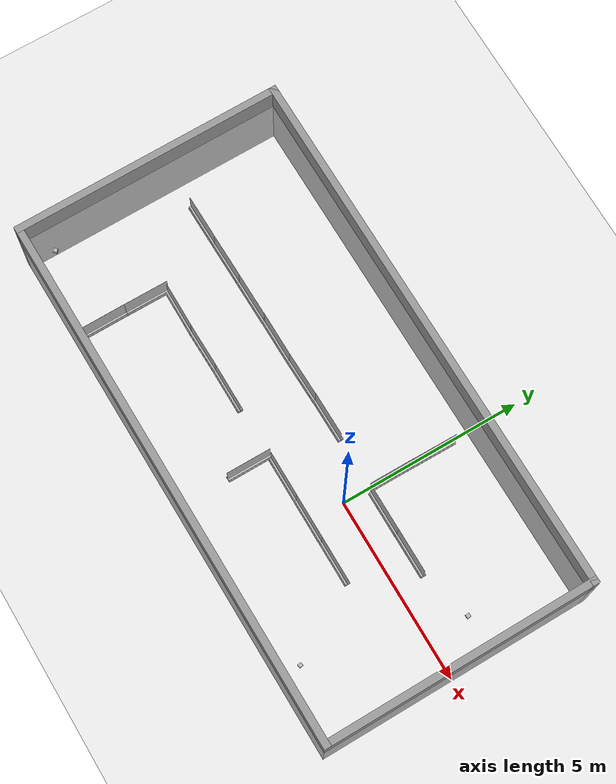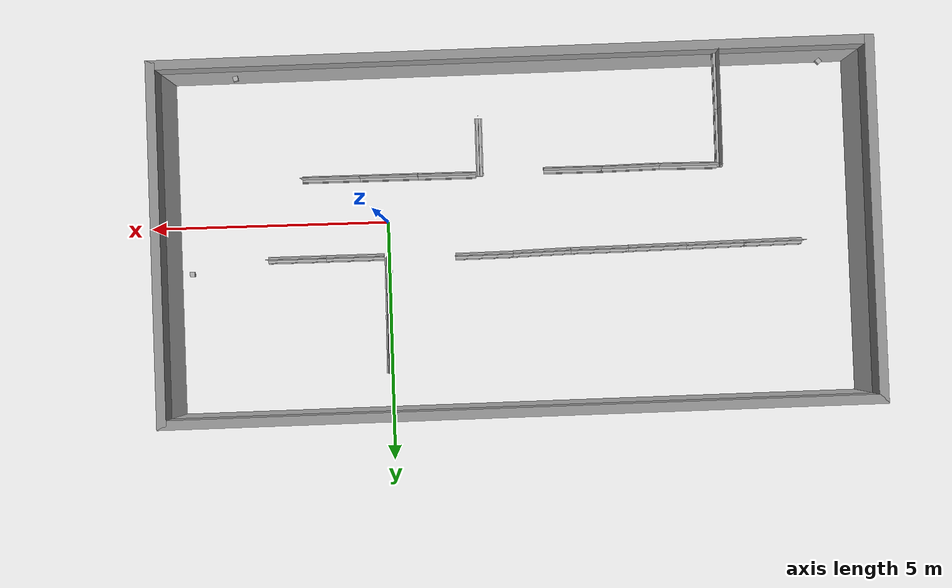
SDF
<sdf version="1.5">
 <world name="default">
  <scene>
   <sky><clouds><speed>12</speed></clouds></sky>
   <ambient>0.4 0.4 0.4 1</ambient>
   <background>0.7 0.7 0.7 1</background>
   <shadows>1</shadows>
  </scene>
  <light name="sun" type="directional">
   <pose>0 0 10 0 -0 0</pose>
   <diffuse>0.8 0.8 0.8 1</diffuse>
   <specular>0.2 0.2 0.2 1</specular>
   <attenuation>
    <range>1000</range>
    <constant>0.9</constant>
    <linear>0.01</linear>
    <quadratic>0.001</quadratic>
   </attenuation>
   <direction>-0.5 0.1 -0.9</direction>
  </light>
  <model name="ground_plane">
   <pose>4 0 0 0 -0 0</pose>
   <static>1</static>
   <link name="link">
    <collision name="collision">
     <geometry><plane><normal>0 0 1</normal><size>100 100</size></plane></geometry>
     <surface><friction><ode><mu>100</mu><mu2>50</mu2></ode></friction></surface>
    </collision>
    <visual name="visual">
     <cast_shadows>0</cast_shadows>
     <geometry><plane><normal>0 0 1</normal><size>100 100</size></plane></geometry>
     <material>
      <script><uri>file://media/materials/scripts/gazebo.material</uri><name>Gazebo/Grey</name></script>
     </material>
    </visual>
    <velocity_decay><linear>0</linear><angular>0</angular></velocity_decay>
   </link>
  </model>
  <physics name="default_physics" default="0" type="ode">
   <max_step_size>0.001</max_step_size>
   <real_time_factor>1</real_time_factor>
   <real_time_update_rate>1000</real_time_update_rate>
   <gravity>0 0 -9.8</gravity>
   <magnetic_field>5.5645e-06 2.28758e-05 -4.23884e-05</magnetic_field>
  </physics>
  <scene><ambient>0.4 0.4 0.4 1</ambient><background>0.7 0.7 0.7 1</background><shadows>1</shadows></scene>
  <spherical_coordinates>
   <surface_model>EARTH_WGS84</surface_model>
   <latitude_deg>0</latitude_deg>
   <longitude_deg>0</longitude_deg>
   <elevation>0</elevation>
   <heading_deg>0</heading_deg>
  </spherical_coordinates>
  <model name="building_template_model">
   <static>1</static>
   <link name="__default__"><velocity_decay><linear>0</linear><angular>0</angular></velocity_decay></link>
  </model>
  <model name="Fleming_big">
   <pose>-2.70751 4.05396 -1.82922 0 0 -3.13501</pose>
   <link name="Wall_0">
    <collision name="Wall_0_Collision">
     <geometry><box><size>15.2 0.2 2.5</size></box></geometry>
     <pose>0 0 1.25 0 -0 0</pose>
    </collision>
    <visual name="Wall_0_Visual">
     <pose>0 0 1.25 0 -0 0</pose>
     <geometry><box><size>15.2 0.2 2.5</size></box></geometry>
     <material>
      <script><uri>file://media/materials/scripts/gazebo.material</uri><name>Gazebo/Grey</name></script>
     </material>
    </visual>
    <velocity_decay><linear>0</linear><angular>0</angular></velocity_decay>
   </link>
   <link name="Wall_2">
    <collision name="Wall_2_Collision">
     <geometry><box><size>7.7 0.2 2.5</size></box></geometry>
     <pose>0 0 1.25 0 -0 0</pose>
    </collision>
    <visual name="Wall_2_Visual">
     <pose>0 0 1.25 0 -0 0</pose>
     <geometry><box><size>7.7 0.2 2.5</size></box></geometry>
     <material>
      <script><uri>file://media/materials/scripts/gazebo.material</uri><name>Gazebo/Grey</name></script>
     </material>
    </visual>
    <velocity_decay><linear>0</linear><angular>0</angular></velocity_decay>
    <pose>-7.5 3.75 0 0 -0 1.5708</pose>
   </link>
   <link name="Wall_3">
    <collision name="Wall_3_Collision">
     <geometry><box><size>15.2 0.2 2.5</size></box></geometry>
     <pose>0 0 1.25 0 -0 0</pose>
    </collision>
    <visual name="Wall_3_Visual">
     <pose>0 0 1.25 0 -0 0</pose>
     <geometry><box><size>15.2 0.2 2.5</size></box></geometry>
     <material>
      <script><uri>file://media/materials/scripts/gazebo.material</uri><name>Gazebo/Grey</name></script>
     </material>
    </visual>
    <velocity_decay><linear>0</linear><angular>0</angular></velocity_decay>
    <pose>0 7.5 0 0 -0 0</pose>
   </link>
   <link name="Wall_4">
    <collision name="Wall_4_Collision">
     <geometry><box><size>7.7 0.2 2.5</size></box></geometry>
     <pose>0 0 1.25 0 -0 0</pose>
    </collision>
    <visual name="Wall_4_Visual">
     <pose>0 0 1.25 0 -0 0</pose>
     <geometry><box><size>7.7 0.2 2.5</size></box></geometry>
     <material>
      <script><uri>file://media/materials/scripts/gazebo.material</uri><name>Gazebo/Grey</name></script>
     </material>
    </visual>
    <velocity_decay><linear>0</linear><angular>0</angular></velocity_decay>
    <pose>7.5 3.75 0 0 0 -1.5708</pose>
   </link>
   <static>1</static>
  </model>
  <model name="security camera1">
   <static>1</static>
   <pose>-9 -3 1.04429 0 -0 0.735896</pose>
   <link name="link">
    <inertial><mass>0.1</mass></inertial>
    <collision name="collision"><geometry><box><size>0.1 0.1 0.1</size></box></geometry></collision>
    <visual name="visual"><geometry><box><size>0.1 0.1 0.1</size></box></geometry></visual>
    <sensor name="camera" type="camera">
     <camera name="__default__">
      <horizontal_fov>1.047</horizontal_fov>
      <image><width>320</width><height>240</height></image>
      <clip><near>0.1</near><far>100</far></clip>
     </camera>
     <plugin name="security_camera1_controller" filename="libgazebo_ros_camera.so">
      <always_on>1</always_on>
      <update_rate>30</update_rate>
      <cameraName>security_camera1/camera</cameraName>
      <imageTopicName>image_raw</imageTopicName>
      <cameraInfoTopicName>camera_info</cameraInfoTopicName>
      <frameName>camera_link</frameName>
      <hackBaseline>0.07</hackBaseline>
      <distortionK1>0.0</distortionK1>
      <distortionK2>0.0</distortionK2>
      <distortionK3>0.0</distortionK3>
      <distortionT1>0.0</distortionT1>
      <distortionT2>0.0</distortionT2>
     </plugin>
     <visualize>0</visualize>
    </sensor>
   </link>
  </model>
  <model name="security camera2">
   <static>1</static>
   <pose>4 1 0.968306 0 0 -3.12106</pose>
   <link name="link">
    <inertial><mass>0.1</mass></inertial>
    <collision name="collision"><geometry><box><size>0.1 0.1 0.1</size></box></geometry></collision>
    <visual name="visual"><geometry><box><size>0.1 0.1 0.1</size></box></geometry></visual>
    <sensor name="camera" type="camera">
     <camera name="__default__">
      <horizontal_fov>1.047</horizontal_fov>
      <image><width>320</width><height>240</height></image>
      <clip><near>0.1</near><far>100</far></clip>
     </camera>
     <plugin name="security_camera2_controller" filename="libgazebo_ros_camera.so">
      <always_on>1</always_on>
      <update_rate>30</update_rate>
      <cameraName>security_camera2/camera</cameraName>
      <imageTopicName>image_raw</imageTopicName>
      <cameraInfoTopicName>camera_info</cameraInfoTopicName>
      <frameName>camera_link</frameName>
      <hackBaseline>0.07</hackBaseline>
      <distortionK1>0.0</distortionK1>
      <distortionK2>0.0</distortionK2>
      <distortionK3>0.0</distortionK3>
      <distortionT1>0.0</distortionT1>
      <distortionT2>0.0</distortionT2>
     </plugin>
     <visualize>0</visualize>
    </sensor>
   </link>
  </model>
  <model name="security camera3">
   <static>1</static>
   <pose>3 -3 1.05057 0 -0 1.80297</pose>
   <link name="link">
    <inertial><mass>0.1</mass></inertial>
    <collision name="collision"><geometry><box><size>0.1 0.1 0.1</size></box></geometry></collision>
    <visual name="visual"><geometry><box><size>0.1 0.1 0.1</size></box></geometry></visual>
    <sensor name="camera" type="camera">
     <camera name="__default__">
      <horizontal_fov>1.047</horizontal_fov>
      <image><width>320</width><height>240</height></image>
      <clip><near>0.1</near><far>100</far></clip>
     </camera>
     <plugin name="security_camera3_controller" filename="libgazebo_ros_camera.so">
      <always_on>1</always_on>
      <update_rate>30</update_rate>
      <cameraName>security_camera3/camera</cameraName>
      <imageTopicName>image_raw</imageTopicName>
      <cameraInfoTopicName>camera_info</cameraInfoTopicName>
      <frameName>camera_link</frameName>
      <hackBaseline>0.07</hackBaseline>
      <distortionK1>0.0</distortionK1>
      <distortionK2>0.0</distortionK2>
      <distortionK3>0.0</distortionK3>
      <distortionT1>0.0</distortionT1>
      <distortionT2>0.0</distortionT2>
     </plugin>
     <visualize>0</visualize>
    </sensor>
   </link>
  </model>
  <model name="fleming_wall no plugin">
   <static>1</static>
   <link name="wall">
    <pose>0 0 0.0254 0 -0 0</pose>
    <visual name="base_visual">
     <geometry><box><size>1.2192 0.1524 0.0508</size></box></geometry>
     <material>
      <script>
       <uri>model://fleming_wall/materials/scripts</uri>
       <uri>model://fleming_wall/materials/textures</uri>
       <name>FlemingWall/Image</name>
      </script>
     </material>
    </visual>
    <visual name="front_strut_visual">
     <pose>0 0.028575 0.0508 0 -0 0</pose>
     <geometry><box><size>1.2192 0.0508 0.0508</size></box></geometry>
     <material>
      <script>
       <uri>model://fleming_wall/materials/scripts</uri>
       <uri>model://fleming_wall/materials/textures</uri>
       <name>FlemingWall/Image</name>
      </script>
     </material>
    </visual>
    <visual name="back_strut_visual">
     <pose>0 -0.028575 0.0508 0 -0 0</pose>
     <geometry><box><size>1.2192 0.0508 0.0508</size></box></geometry>
     <material>
      <script>
       <uri>model://fleming_wall/materials/scripts</uri>
       <uri>model://fleming_wall/materials/textures</uri>
       <name>FlemingWall/Image</name>
      </script>
     </material>
    </visual>
    <visual name="panel_visual">
     <pose>0 0 0.3556 0 -0 0</pose>
     <geometry><box><size>1.2192 0.003175 0.6096</size></box></geometry>
     <material>
      <script>
       <uri>model://fleming_wall/materials/scripts</uri>
       <uri>model://fleming_wall/materials/textures</uri>
       <name>FlemingWall/Image</name>
      </script>
     </material>
    </visual>
   </link>
   <pose>-1.26612 -0.953094 0 0 -0 0</pose>
  </model>
  <model name="fleming_wall no plugin_0">
   <static>1</static>
   <link name="wall">
    <pose>0 0 0.0254 0 -0 0</pose>
    <visual name="base_visual">
     <geometry><box><size>1.2192 0.1524 0.0508</size></box></geometry>
     <material>
      <script>
       <uri>model://fleming_wall/materials/scripts</uri>
       <uri>model://fleming_wall/materials/textures</uri>
       <name>FlemingWall/Image</name>
      </script>
     </material>
    </visual>
    <visual name="front_strut_visual">
     <pose>0 0.028575 0.0508 0 -0 0</pose>
     <geometry><box><size>1.2192 0.0508 0.0508</size></box></geometry>
     <material>
      <script>
       <uri>model://fleming_wall/materials/scripts</uri>
       <uri>model://fleming_wall/materials/textures</uri>
       <name>FlemingWall/Image</name>
      </script>
     </material>
    </visual>
    <visual name="back_strut_visual">
     <pose>0 -0.028575 0.0508 0 -0 0</pose>
     <geometry><box><size>1.2192 0.0508 0.0508</size></box></geometry>
     <material>
      <script>
       <uri>model://fleming_wall/materials/scripts</uri>
       <uri>model://fleming_wall/materials/textures</uri>
       <name>FlemingWall/Image</name>
      </script>
     </material>
    </visual>
    <visual name="panel_visual">
     <pose>0 0 0.3556 0 -0 0</pose>
     <geometry><box><size>1.2192 0.003175 0.6096</size></box></geometry>
     <material>
      <script>
       <uri>model://fleming_wall/materials/scripts</uri>
       <uri>model://fleming_wall/materials/textures</uri>
       <name>FlemingWall/Image</name>
      </script>
     </material>
    </visual>
   </link>
   <pose>-0.041409 -0.954382 0 0 -0 0</pose>
  </model>
  <model name="fleming_wall no plugin_1">
   <static>1</static>
   <link name="wall">
    <pose>0 0 0.0254 0 -0 0</pose>
    <visual name="base_visual">
     <geometry><box><size>1.2192 0.1524 0.0508</size></box></geometry>
     <material>
      <script>
       <uri>model://fleming_wall/materials/scripts</uri>
       <uri>model://fleming_wall/materials/textures</uri>
       <name>FlemingWall/Image</name>
      </script>
     </material>
    </visual>
    <visual name="front_strut_visual">
     <pose>0 0.028575 0.0508 0 -0 0</pose>
     <geometry><box><size>1.2192 0.0508 0.0508</size></box></geometry>
     <material>
      <script>
       <uri>model://fleming_wall/materials/scripts</uri>
       <uri>model://fleming_wall/materials/textures</uri>
       <name>FlemingWall/Image</name>
      </script>
     </material>
    </visual>
    <visual name="back_strut_visual">
     <pose>0 -0.028575 0.0508 0 -0 0</pose>
     <geometry><box><size>1.2192 0.0508 0.0508</size></box></geometry>
     <material>
      <script>
       <uri>model://fleming_wall/materials/scripts</uri>
       <uri>model://fleming_wall/materials/textures</uri>
       <name>FlemingWall/Image</name>
      </script>
     </material>
    </visual>
    <visual name="panel_visual">
     <pose>0 0 0.3556 0 -0 0</pose>
     <geometry><box><size>1.2192 0.003175 0.6096</size></box></geometry>
     <material>
      <script>
       <uri>model://fleming_wall/materials/scripts</uri>
       <uri>model://fleming_wall/materials/textures</uri>
       <name>FlemingWall/Image</name>
      </script>
     </material>
    </visual>
   </link>
   <pose>1.17672 -0.95383 0 0 -0 0</pose>
  </model>
  <model name="fleming_wall no plugin_2">
   <static>1</static>
   <link name="wall">
    <pose>0 0 0.0254 0 -0 0</pose>
    <visual name="base_visual">
     <geometry><box><size>1.2192 0.1524 0.0508</size></box></geometry>
     <material>
      <script>
       <uri>model://fleming_wall/materials/scripts</uri>
       <uri>model://fleming_wall/materials/textures</uri>
       <name>FlemingWall/Image</name>
      </script>
     </material>
    </visual>
    <visual name="front_strut_visual">
     <pose>0 0.028575 0.0508 0 -0 0</pose>
     <geometry><box><size>1.2192 0.0508 0.0508</size></box></geometry>
     <material>
      <script>
       <uri>model://fleming_wall/materials/scripts</uri>
       <uri>model://fleming_wall/materials/textures</uri>
       <name>FlemingWall/Image</name>
      </script>
     </material>
    </visual>
    <visual name="back_strut_visual">
     <pose>0 -0.028575 0.0508 0 -0 0</pose>
     <geometry><box><size>1.2192 0.0508 0.0508</size></box></geometry>
     <material>
      <script>
       <uri>model://fleming_wall/materials/scripts</uri>
       <uri>model://fleming_wall/materials/textures</uri>
       <name>FlemingWall/Image</name>
      </script>
     </material>
    </visual>
    <visual name="panel_visual">
     <pose>0 0 0.3556 0 -0 0</pose>
     <geometry><box><size>1.2192 0.003175 0.6096</size></box></geometry>
     <material>
      <script>
       <uri>model://fleming_wall/materials/scripts</uri>
       <uri>model://fleming_wall/materials/textures</uri>
       <name>FlemingWall/Image</name>
      </script>
     </material>
    </visual>
   </link>
   <pose>-1.96019 -1.53218 0 0 -0 1.57106</pose>
  </model>
  <model name="fleming_wall no plugin_3">
   <static>1</static>
   <link name="wall">
    <pose>0 0 0.0254 0 -0 0</pose>
    <visual name="base_visual">
     <geometry><box><size>1.2192 0.1524 0.0508</size></box></geometry>
     <material>
      <script>
       <uri>model://fleming_wall/materials/scripts</uri>
       <uri>model://fleming_wall/materials/textures</uri>
       <name>FlemingWall/Image</name>
      </script>
     </material>
    </visual>
    <visual name="front_strut_visual">
     <pose>0 0.028575 0.0508 0 -0 0</pose>
     <geometry><box><size>1.2192 0.0508 0.0508</size></box></geometry>
     <material>
      <script>
       <uri>model://fleming_wall/materials/scripts</uri>
       <uri>model://fleming_wall/materials/textures</uri>
       <name>FlemingWall/Image</name>
      </script>
     </material>
    </visual>
    <visual name="back_strut_visual">
     <pose>0 -0.028575 0.0508 0 -0 0</pose>
     <geometry><box><size>1.2192 0.0508 0.0508</size></box></geometry>
     <material>
      <script>
       <uri>model://fleming_wall/materials/scripts</uri>
       <uri>model://fleming_wall/materials/textures</uri>
       <name>FlemingWall/Image</name>
      </script>
     </material>
    </visual>
    <visual name="panel_visual">
     <pose>0 0 0.3556 0 -0 0</pose>
     <geometry><box><size>1.2192 0.003175 0.6096</size></box></geometry>
     <material>
      <script>
       <uri>model://fleming_wall/materials/scripts</uri>
       <uri>model://fleming_wall/materials/textures</uri>
       <name>FlemingWall/Image</name>
      </script>
     </material>
    </visual>
   </link>
   <pose>0.71904 0.725186 0 0 -0 0</pose>
  </model>
  <model name="fleming_wall no plugin_4">
   <static>1</static>
   <link name="wall">
    <pose>0 0 0.0254 0 -0 0</pose>
    <visual name="base_visual">
     <geometry><box><size>1.2192 0.1524 0.0508</size></box></geometry>
     <material>
      <script>
       <uri>model://fleming_wall/materials/scripts</uri>
       <uri>model://fleming_wall/materials/textures</uri>
       <name>FlemingWall/Image</name>
      </script>
     </material>
    </visual>
    <visual name="front_strut_visual">
     <pose>0 0.028575 0.0508 0 -0 0</pose>
     <geometry><box><size>1.2192 0.0508 0.0508</size></box></geometry>
     <material>
      <script>
       <uri>model://fleming_wall/materials/scripts</uri>
       <uri>model://fleming_wall/materials/textures</uri>
       <name>FlemingWall/Image</name>
      </script>
     </material>
    </visual>
    <visual name="back_strut_visual">
     <pose>0 -0.028575 0.0508 0 -0 0</pose>
     <geometry><box><size>1.2192 0.0508 0.0508</size></box></geometry>
     <material>
      <script>
       <uri>model://fleming_wall/materials/scripts</uri>
       <uri>model://fleming_wall/materials/textures</uri>
       <name>FlemingWall/Image</name>
      </script>
     </material>
    </visual>
    <visual name="panel_visual">
     <pose>0 0 0.3556 0 -0 0</pose>
     <geometry><box><size>1.2192 0.003175 0.6096</size></box></geometry>
     <material>
      <script>
       <uri>model://fleming_wall/materials/scripts</uri>
       <uri>model://fleming_wall/materials/textures</uri>
       <name>FlemingWall/Image</name>
      </script>
     </material>
    </visual>
   </link>
   <pose>1.94093 0.728107 0 0 -0 0</pose>
  </model>
  <model name="fleming_wall no plugin_5">
   <static>1</static>
   <link name="wall">
    <pose>0 0 0.0254 0 -0 0</pose>
    <visual name="base_visual">
     <geometry><box><size>1.2192 0.1524 0.0508</size></box></geometry>
     <material>
      <script>
       <uri>model://fleming_wall/materials/scripts</uri>
       <uri>model://fleming_wall/materials/textures</uri>
       <name>FlemingWall/Image</name>
      </script>
     </material>
    </visual>
    <visual name="front_strut_visual">
     <pose>0 0.028575 0.0508 0 -0 0</pose>
     <geometry><box><size>1.2192 0.0508 0.0508</size></box></geometry>
     <material>
      <script>
       <uri>model://fleming_wall/materials/scripts</uri>
       <uri>model://fleming_wall/materials/textures</uri>
       <name>FlemingWall/Image</name>
      </script>
     </material>
    </visual>
    <visual name="back_strut_visual">
     <pose>0 -0.028575 0.0508 0 -0 0</pose>
     <geometry><box><size>1.2192 0.0508 0.0508</size></box></geometry>
     <material>
      <script>
       <uri>model://fleming_wall/materials/scripts</uri>
       <uri>model://fleming_wall/materials/textures</uri>
       <name>FlemingWall/Image</name>
      </script>
     </material>
    </visual>
    <visual name="panel_visual">
     <pose>0 0 0.3556 0 -0 0</pose>
     <geometry><box><size>1.2192 0.003175 0.6096</size></box></geometry>
     <material>
      <script>
       <uri>model://fleming_wall/materials/scripts</uri>
       <uri>model://fleming_wall/materials/textures</uri>
       <name>FlemingWall/Image</name>
      </script>
     </material>
    </visual>
   </link>
   <pose>0.02927 1.34872 0 0 -0 1.56833</pose>
  </model>
  <model name="fleming_wall no plugin_6">
   <static>1</static>
   <link name="wall">
    <pose>0 0 0.0254 0 -0 0</pose>
    <visual name="base_visual">
     <geometry><box><size>1.2192 0.1524 0.0508</size></box></geometry>
     <material>
      <script>
       <uri>model://fleming_wall/materials/scripts</uri>
       <uri>model://fleming_wall/materials/textures</uri>
       <name>FlemingWall/Image</name>
      </script>
     </material>
    </visual>
    <visual name="front_strut_visual">
     <pose>0 0.028575 0.0508 0 -0 0</pose>
     <geometry><box><size>1.2192 0.0508 0.0508</size></box></geometry>
     <material>
      <script>
       <uri>model://fleming_wall/materials/scripts</uri>
       <uri>model://fleming_wall/materials/textures</uri>
       <name>FlemingWall/Image</name>
      </script>
     </material>
    </visual>
    <visual name="back_strut_visual">
     <pose>0 -0.028575 0.0508 0 -0 0</pose>
     <geometry><box><size>1.2192 0.0508 0.0508</size></box></geometry>
     <material>
      <script>
       <uri>model://fleming_wall/materials/scripts</uri>
       <uri>model://fleming_wall/materials/textures</uri>
       <name>FlemingWall/Image</name>
      </script>
     </material>
    </visual>
    <visual name="panel_visual">
     <pose>0 0 0.3556 0 -0 0</pose>
     <geometry><box><size>1.2192 0.003175 0.6096</size></box></geometry>
     <material>
      <script>
       <uri>model://fleming_wall/materials/scripts</uri>
       <uri>model://fleming_wall/materials/textures</uri>
       <name>FlemingWall/Image</name>
      </script>
     </material>
    </visual>
   </link>
   <pose>0.039497 2.56669 0 0 -0 1.56245</pose>
  </model>
  <model name="fleming_wall no plugin_7">
   <static>1</static>
   <link name="wall">
    <pose>0 0 0.0254 0 -0 0</pose>
    <visual name="base_visual">
     <geometry><box><size>1.2192 0.1524 0.0508</size></box></geometry>
     <material>
      <script>
       <uri>model://fleming_wall/materials/scripts</uri>
       <uri>model://fleming_wall/materials/textures</uri>
       <name>FlemingWall/Image</name>
      </script>
     </material>
    </visual>
    <visual name="front_strut_visual">
     <pose>0 0.028575 0.0508 0 -0 0</pose>
     <geometry><box><size>1.2192 0.0508 0.0508</size></box></geometry>
     <material>
      <script>
       <uri>model://fleming_wall/materials/scripts</uri>
       <uri>model://fleming_wall/materials/textures</uri>
       <name>FlemingWall/Image</name>
      </script>
     </material>
    </visual>
    <visual name="back_strut_visual">
     <pose>0 -0.028575 0.0508 0 -0 0</pose>
     <geometry><box><size>1.2192 0.0508 0.0508</size></box></geometry>
     <material>
      <script>
       <uri>model://fleming_wall/materials/scripts</uri>
       <uri>model://fleming_wall/materials/textures</uri>
       <name>FlemingWall/Image</name>
      </script>
     </material>
    </visual>
    <visual name="panel_visual">
     <pose>0 0 0.3556 0 -0 0</pose>
     <geometry><box><size>1.2192 0.003175 0.6096</size></box></geometry>
     <material>
      <script>
       <uri>model://fleming_wall/materials/scripts</uri>
       <uri>model://fleming_wall/materials/textures</uri>
       <name>FlemingWall/Image</name>
      </script>
     </material>
    </visual>
   </link>
   <pose>-2.00446 0.756106 0 0 -0 0.010747</pose>
  </model>
  <model name="fleming_wall no plugin_8">
   <static>1</static>
   <link name="wall">
    <pose>0 0 0.0254 0 -0 0</pose>
    <visual name="base_visual">
     <geometry><box><size>1.2192 0.1524 0.0508</size></box></geometry>
     <material>
      <script>
       <uri>model://fleming_wall/materials/scripts</uri>
       <uri>model://fleming_wall/materials/textures</uri>
       <name>FlemingWall/Image</name>
      </script>
     </material>
    </visual>
    <visual name="front_strut_visual">
     <pose>0 0.028575 0.0508 0 -0 0</pose>
     <geometry><box><size>1.2192 0.0508 0.0508</size></box></geometry>
     <material>
      <script>
       <uri>model://fleming_wall/materials/scripts</uri>
       <uri>model://fleming_wall/materials/textures</uri>
       <name>FlemingWall/Image</name>
      </script>
     </material>
    </visual>
    <visual name="back_strut_visual">
     <pose>0 -0.028575 0.0508 0 -0 0</pose>
     <geometry><box><size>1.2192 0.0508 0.0508</size></box></geometry>
     <material>
      <script>
       <uri>model://fleming_wall/materials/scripts</uri>
       <uri>model://fleming_wall/materials/textures</uri>
       <name>FlemingWall/Image</name>
      </script>
     </material>
    </visual>
    <visual name="panel_visual">
     <pose>0 0 0.3556 0 -0 0</pose>
     <geometry><box><size>1.2192 0.003175 0.6096</size></box></geometry>
     <material>
      <script>
       <uri>model://fleming_wall/materials/scripts</uri>
       <uri>model://fleming_wall/materials/textures</uri>
       <name>FlemingWall/Image</name>
      </script>
     </material>
    </visual>
   </link>
   <pose>-3.21849 0.729658 0 0 -0 0.024185</pose>
  </model>
  <model name="fleming_wall no plugin_9">
   <static>1</static>
   <link name="wall">
    <pose>0 0 0.0254 0 -0 0</pose>
    <visual name="base_visual">
     <geometry><box><size>1.2192 0.1524 0.0508</size></box></geometry>
     <material>
      <script>
       <uri>model://fleming_wall/materials/scripts</uri>
       <uri>model://fleming_wall/materials/textures</uri>
       <name>FlemingWall/Image</name>
      </script>
     </material>
    </visual>
    <visual name="front_strut_visual">
     <pose>0 0.028575 0.0508 0 -0 0</pose>
     <geometry><box><size>1.2192 0.0508 0.0508</size></box></geometry>
     <material>
      <script>
       <uri>model://fleming_wall/materials/scripts</uri>
       <uri>model://fleming_wall/materials/textures</uri>
       <name>FlemingWall/Image</name>
      </script>
     </material>
    </visual>
    <visual name="back_strut_visual">
     <pose>0 -0.028575 0.0508 0 -0 0</pose>
     <geometry><box><size>1.2192 0.0508 0.0508</size></box></geometry>
     <material>
      <script>
       <uri>model://fleming_wall/materials/scripts</uri>
       <uri>model://fleming_wall/materials/textures</uri>
       <name>FlemingWall/Image</name>
      </script>
     </material>
    </visual>
    <visual name="panel_visual">
     <pose>0 0 0.3556 0 -0 0</pose>
     <geometry><box><size>1.2192 0.003175 0.6096</size></box></geometry>
     <material>
      <script>
       <uri>model://fleming_wall/materials/scripts</uri>
       <uri>model://fleming_wall/materials/textures</uri>
       <name>FlemingWall/Image</name>
      </script>
     </material>
    </visual>
   </link>
   <pose>-4.44076 0.709416 0 0 -0 0.007598</pose>
  </model>
  <model name="fleming_wall no plugin_10">
   <static>1</static>
   <link name="wall">
    <pose>0 0 0.0254 0 -0 0</pose>
    <visual name="base_visual">
     <geometry><box><size>1.2192 0.1524 0.0508</size></box></geometry>
     <material>
      <script>
       <uri>model://fleming_wall/materials/scripts</uri>
       <uri>model://fleming_wall/materials/textures</uri>
       <name>FlemingWall/Image</name>
      </script>
     </material>
    </visual>
    <visual name="front_strut_visual">
     <pose>0 0.028575 0.0508 0 -0 0</pose>
     <geometry><box><size>1.2192 0.0508 0.0508</size></box></geometry>
     <material>
      <script>
       <uri>model://fleming_wall/materials/scripts</uri>
       <uri>model://fleming_wall/materials/textures</uri>
       <name>FlemingWall/Image</name>
      </script>
     </material>
    </visual>
    <visual name="back_strut_visual">
     <pose>0 -0.028575 0.0508 0 -0 0</pose>
     <geometry><box><size>1.2192 0.0508 0.0508</size></box></geometry>
     <material>
      <script>
       <uri>model://fleming_wall/materials/scripts</uri>
       <uri>model://fleming_wall/materials/textures</uri>
       <name>FlemingWall/Image</name>
      </script>
     </material>
    </visual>
    <visual name="panel_visual">
     <pose>0 0 0.3556 0 -0 0</pose>
     <geometry><box><size>1.2192 0.003175 0.6096</size></box></geometry>
     <material>
      <script>
       <uri>model://fleming_wall/materials/scripts</uri>
       <uri>model://fleming_wall/materials/textures</uri>
       <name>FlemingWall/Image</name>
      </script>
     </material>
    </visual>
   </link>
   <pose>-5.66038 0.691979 0 0 -0 0.013973</pose>
  </model>
  <model name="fleming_wall no plugin_11">
   <static>1</static>
   <link name="wall">
    <pose>0 0 0.0254 0 -0 0</pose>
    <visual name="base_visual">
     <geometry><box><size>1.2192 0.1524 0.0508</size></box></geometry>
     <material>
      <script>
       <uri>model://fleming_wall/materials/scripts</uri>
       <uri>model://fleming_wall/materials/textures</uri>
       <name>FlemingWall/Image</name>
      </script>
     </material>
    </visual>
    <visual name="front_strut_visual">
     <pose>0 0.028575 0.0508 0 -0 0</pose>
     <geometry><box><size>1.2192 0.0508 0.0508</size></box></geometry>
     <material>
      <script>
       <uri>model://fleming_wall/materials/scripts</uri>
       <uri>model://fleming_wall/materials/textures</uri>
       <name>FlemingWall/Image</name>
      </script>
     </material>
    </visual>
    <visual name="back_strut_visual">
     <pose>0 -0.028575 0.0508 0 -0 0</pose>
     <geometry><box><size>1.2192 0.0508 0.0508</size></box></geometry>
     <material>
      <script>
       <uri>model://fleming_wall/materials/scripts</uri>
       <uri>model://fleming_wall/materials/textures</uri>
       <name>FlemingWall/Image</name>
      </script>
     </material>
    </visual>
    <visual name="panel_visual">
     <pose>0 0 0.3556 0 -0 0</pose>
     <geometry><box><size>1.2192 0.003175 0.6096</size></box></geometry>
     <material>
      <script>
       <uri>model://fleming_wall/materials/scripts</uri>
       <uri>model://fleming_wall/materials/textures</uri>
       <name>FlemingWall/Image</name>
      </script>
     </material>
    </visual>
   </link>
   <pose>-6.87895 0.673771 0 0 -0 0.01833</pose>
  </model>
  <model name="fleming_wall no plugin_12">
   <static>1</static>
   <link name="wall">
    <pose>0 0 0.0254 0 -0 0</pose>
    <visual name="base_visual">
     <geometry><box><size>1.2192 0.1524 0.0508</size></box></geometry>
     <material>
      <script>
       <uri>model://fleming_wall/materials/scripts</uri>
       <uri>model://fleming_wall/materials/textures</uri>
       <name>FlemingWall/Image</name>
      </script>
     </material>
    </visual>
    <visual name="front_strut_visual">
     <pose>0 0.028575 0.0508 0 -0 0</pose>
     <geometry><box><size>1.2192 0.0508 0.0508</size></box></geometry>
     <material>
      <script>
       <uri>model://fleming_wall/materials/scripts</uri>
       <uri>model://fleming_wall/materials/textures</uri>
       <name>FlemingWall/Image</name>
      </script>
     </material>
    </visual>
    <visual name="back_strut_visual">
     <pose>0 -0.028575 0.0508 0 -0 0</pose>
     <geometry><box><size>1.2192 0.0508 0.0508</size></box></geometry>
     <material>
      <script>
       <uri>model://fleming_wall/materials/scripts</uri>
       <uri>model://fleming_wall/materials/textures</uri>
       <name>FlemingWall/Image</name>
      </script>
     </material>
    </visual>
    <visual name="panel_visual">
     <pose>0 0 0.3556 0 -0 0</pose>
     <geometry><box><size>1.2192 0.003175 0.6096</size></box></geometry>
     <material>
      <script>
       <uri>model://fleming_wall/materials/scripts</uri>
       <uri>model://fleming_wall/materials/textures</uri>
       <name>FlemingWall/Image</name>
      </script>
     </material>
    </visual>
   </link>
   <pose>-8.09943 0.65602 0 0 -0 0.014713</pose>
  </model>
  <model name="fleming_wall no plugin_13">
   <static>1</static>
   <link name="wall">
    <pose>0 0 0.0254 0 -0 0</pose>
    <visual name="base_visual">
     <geometry><box><size>1.2192 0.1524 0.0508</size></box></geometry>
     <material>
      <script>
       <uri>model://fleming_wall/materials/scripts</uri>
       <uri>model://fleming_wall/materials/textures</uri>
       <name>FlemingWall/Image</name>
      </script>
     </material>
    </visual>
    <visual name="front_strut_visual">
     <pose>0 0.028575 0.0508 0 -0 0</pose>
     <geometry><box><size>1.2192 0.0508 0.0508</size></box></geometry>
     <material>
      <script>
       <uri>model://fleming_wall/materials/scripts</uri>
       <uri>model://fleming_wall/materials/textures</uri>
       <name>FlemingWall/Image</name>
      </script>
     </material>
    </visual>
    <visual name="back_strut_visual">
     <pose>0 -0.028575 0.0508 0 -0 0</pose>
     <geometry><box><size>1.2192 0.0508 0.0508</size></box></geometry>
     <material>
      <script>
       <uri>model://fleming_wall/materials/scripts</uri>
       <uri>model://fleming_wall/materials/textures</uri>
       <name>FlemingWall/Image</name>
      </script>
     </material>
    </visual>
    <visual name="panel_visual">
     <pose>0 0 0.3556 0 -0 0</pose>
     <geometry><box><size>1.2192 0.003175 0.6096</size></box></geometry>
     <material>
      <script>
       <uri>model://fleming_wall/materials/scripts</uri>
       <uri>model://fleming_wall/materials/textures</uri>
       <name>FlemingWall/Image</name>
      </script>
     </material>
    </visual>
   </link>
   <pose>-3.91582 -1 0 0 -0 0</pose>
  </model>
  <model name="fleming_wall no plugin_14">
   <static>1</static>
   <link name="wall">
    <pose>0 0 0.0254 0 -0 0</pose>
    <visual name="base_visual">
     <geometry><box><size>1.2192 0.1524 0.0508</size></box></geometry>
     <material>
      <script>
       <uri>model://fleming_wall/materials/scripts</uri>
       <uri>model://fleming_wall/materials/textures</uri>
       <name>FlemingWall/Image</name>
      </script>
     </material>
    </visual>
    <visual name="front_strut_visual">
     <pose>0 0.028575 0.0508 0 -0 0</pose>
     <geometry><box><size>1.2192 0.0508 0.0508</size></box></geometry>
     <material>
      <script>
       <uri>model://fleming_wall/materials/scripts</uri>
       <uri>model://fleming_wall/materials/textures</uri>
       <name>FlemingWall/Image</name>
      </script>
     </material>
    </visual>
    <visual name="back_strut_visual">
     <pose>0 -0.028575 0.0508 0 -0 0</pose>
     <geometry><box><size>1.2192 0.0508 0.0508</size></box></geometry>
     <material>
      <script>
       <uri>model://fleming_wall/materials/scripts</uri>
       <uri>model://fleming_wall/materials/textures</uri>
       <name>FlemingWall/Image</name>
      </script>
     </material>
    </visual>
    <visual name="panel_visual">
     <pose>0 0 0.3556 0 -0 0</pose>
     <geometry><box><size>1.2192 0.003175 0.6096</size></box></geometry>
     <material>
      <script>
       <uri>model://fleming_wall/materials/scripts</uri>
       <uri>model://fleming_wall/materials/textures</uri>
       <name>FlemingWall/Image</name>
      </script>
     </material>
    </visual>
   </link>
   <pose>-5.13774 -1.00924 0 0 -0 0.016639</pose>
  </model>
  <model name="fleming_wall no plugin_15">
   <static>1</static>
   <link name="wall">
    <pose>0 0 0.0254 0 -0 0</pose>
    <visual name="base_visual">
     <geometry><box><size>1.2192 0.1524 0.0508</size></box></geometry>
     <material>
      <script>
       <uri>model://fleming_wall/materials/scripts</uri>
       <uri>model://fleming_wall/materials/textures</uri>
       <name>FlemingWall/Image</name>
      </script>
     </material>
    </visual>
    <visual name="front_strut_visual">
     <pose>0 0.028575 0.0508 0 -0 0</pose>
     <geometry><box><size>1.2192 0.0508 0.0508</size></box></geometry>
     <material>
      <script>
       <uri>model://fleming_wall/materials/scripts</uri>
       <uri>model://fleming_wall/materials/textures</uri>
       <name>FlemingWall/Image</name>
      </script>
     </material>
    </visual>
    <visual name="back_strut_visual">
     <pose>0 -0.028575 0.0508 0 -0 0</pose>
     <geometry><box><size>1.2192 0.0508 0.0508</size></box></geometry>
     <material>
      <script>
       <uri>model://fleming_wall/materials/scripts</uri>
       <uri>model://fleming_wall/materials/textures</uri>
       <name>FlemingWall/Image</name>
      </script>
     </material>
    </visual>
    <visual name="panel_visual">
     <pose>0 0 0.3556 0 -0 0</pose>
     <geometry><box><size>1.2192 0.003175 0.6096</size></box></geometry>
     <material>
      <script>
       <uri>model://fleming_wall/materials/scripts</uri>
       <uri>model://fleming_wall/materials/textures</uri>
       <name>FlemingWall/Image</name>
      </script>
     </material>
    </visual>
   </link>
   <pose>-6.36173 -1.01197 0 0 0 -0.007739</pose>
  </model>
  <model name="fleming_wall no plugin_17">
   <static>1</static>
   <link name="wall">
    <pose>0 0 0.0254 0 -0 0</pose>
    <visual name="base_visual">
     <geometry><box><size>1.2192 0.1524 0.0508</size></box></geometry>
     <material>
      <script>
       <uri>model://fleming_wall/materials/scripts</uri>
       <uri>model://fleming_wall/materials/textures</uri>
       <name>FlemingWall/Image</name>
      </script>
     </material>
    </visual>
    <visual name="front_strut_visual">
     <pose>0 0.028575 0.0508 0 -0 0</pose>
     <geometry><box><size>1.2192 0.0508 0.0508</size></box></geometry>
     <material>
      <script>
       <uri>model://fleming_wall/materials/scripts</uri>
       <uri>model://fleming_wall/materials/textures</uri>
       <name>FlemingWall/Image</name>
      </script>
     </material>
    </visual>
    <visual name="back_strut_visual">
     <pose>0 -0.028575 0.0508 0 -0 0</pose>
     <geometry><box><size>1.2192 0.0508 0.0508</size></box></geometry>
     <material>
      <script>
       <uri>model://fleming_wall/materials/scripts</uri>
       <uri>model://fleming_wall/materials/textures</uri>
       <name>FlemingWall/Image</name>
      </script>
     </material>
    </visual>
    <visual name="panel_visual">
     <pose>0 0 0.3556 0 -0 0</pose>
     <geometry><box><size>1.2192 0.003175 0.6096</size></box></geometry>
     <material>
      <script>
       <uri>model://fleming_wall/materials/scripts</uri>
       <uri>model://fleming_wall/materials/textures</uri>
       <name>FlemingWall/Image</name>
      </script>
     </material>
    </visual>
   </link>
   <pose>-7.02095 -1.57436 0 0 0 -1.57228</pose>
  </model>
  <model name="fleming_wall no plugin_18">
   <static>1</static>
   <link name="wall">
    <pose>0 0 0.0254 0 -0 0</pose>
    <visual name="base_visual">
     <geometry><box><size>1.2192 0.1524 0.0508</size></box></geometry>
     <material>
      <script>
       <uri>model://fleming_wall/materials/scripts</uri>
       <uri>model://fleming_wall/materials/textures</uri>
       <name>FlemingWall/Image</name>
      </script>
     </material>
    </visual>
    <visual name="front_strut_visual">
     <pose>0 0.028575 0.0508 0 -0 0</pose>
     <geometry><box><size>1.2192 0.0508 0.0508</size></box></geometry>
     <material>
      <script>
       <uri>model://fleming_wall/materials/scripts</uri>
       <uri>model://fleming_wall/materials/textures</uri>
       <name>FlemingWall/Image</name>
      </script>
     </material>
    </visual>
    <visual name="back_strut_visual">
     <pose>0 -0.028575 0.0508 0 -0 0</pose>
     <geometry><box><size>1.2192 0.0508 0.0508</size></box></geometry>
     <material>
      <script>
       <uri>model://fleming_wall/materials/scripts</uri>
       <uri>model://fleming_wall/materials/textures</uri>
       <name>FlemingWall/Image</name>
      </script>
     </material>
    </visual>
    <visual name="panel_visual">
     <pose>0 0 0.3556 0 -0 0</pose>
     <geometry><box><size>1.2192 0.003175 0.6096</size></box></geometry>
     <material>
      <script>
       <uri>model://fleming_wall/materials/scripts</uri>
       <uri>model://fleming_wall/materials/textures</uri>
       <name>FlemingWall/Image</name>
      </script>
     </material>
    </visual>
   </link>
   <pose>-7.019 -2.78584 0 0 -0 1.57879</pose>
  </model>
 </world>
</sdf>
